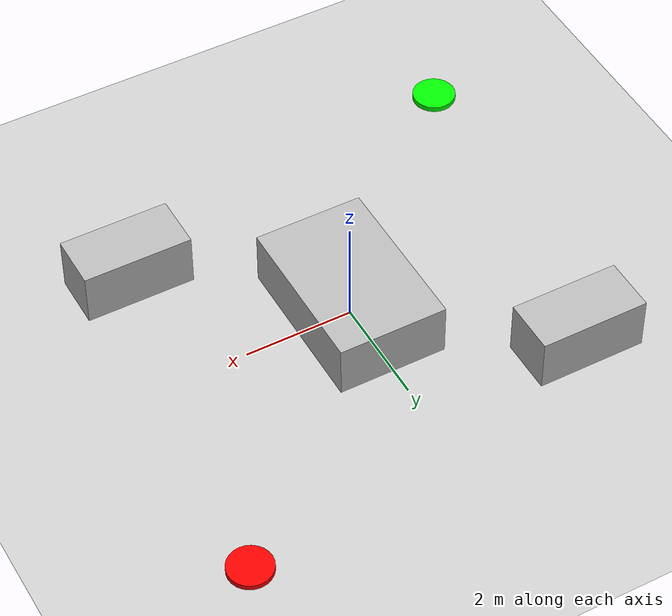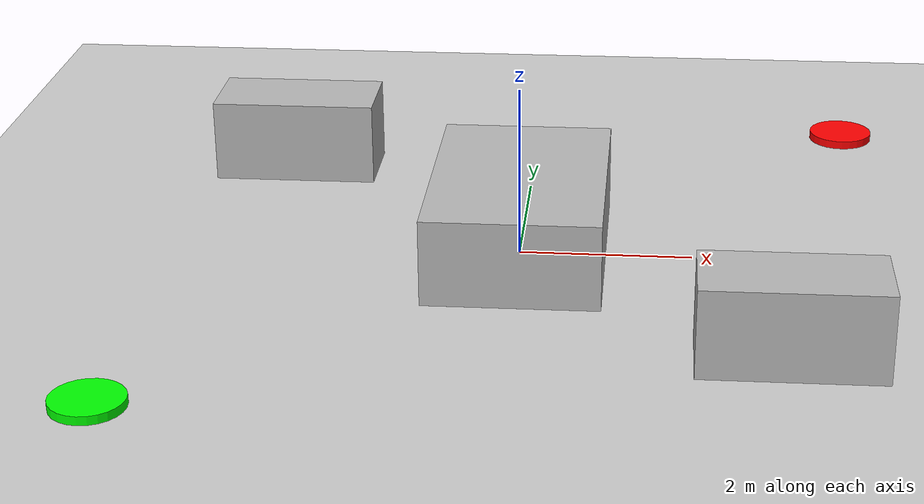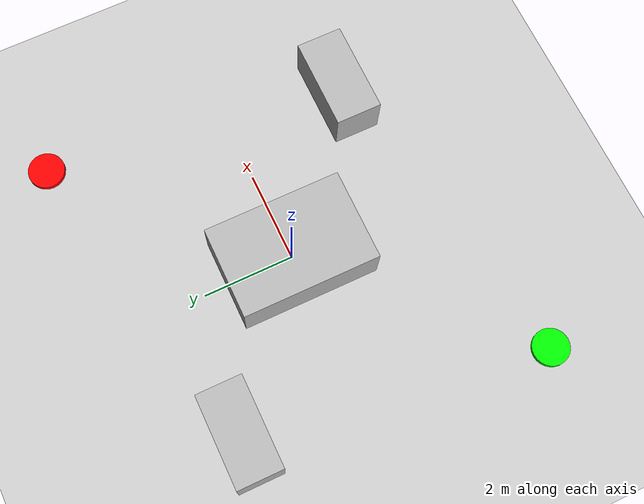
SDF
<?xml version="1.0" ?>

<sdf version="1.6">
  <world name="bug2_world">

    <include>
      <uri>model://ground_plane</uri>
    </include>

    <include>
      <uri>model://sun</uri>
    </include>

    <!-- Central obstacle -->
    <model name="central_obstacle">
      <static>true</static>

      <pose>0 0 0.5 0 0 0</pose>

      <link name="link">

        <collision name="collision">
          <geometry>
            <box>
              <size>2.0 3.0 1.0</size>
            </box>
          </geometry>
        </collision>

        <visual name="visual">
          <geometry>
            <box>
              <size>2.0 3.0 1.0</size>
            </box>
          </geometry>
        </visual>

      </link>
    </model>

    <!-- Left obstacle -->
    <model name="left_obstacle">
      <static>true</static>

      <pose>-3 2.5 0.5 0 0 0</pose>

      <link name="link">

        <collision name="collision">
          <geometry>
            <box>
              <size>2.0 1.0 1.0</size>
            </box>
          </geometry>
        </collision>

        <visual name="visual">
          <geometry>
            <box>
              <size>2.0 1.0 1.0</size>
            </box>
          </geometry>
        </visual>

      </link>
    </model>

    <!-- Right obstacle -->
    <model name="right_obstacle">
      <static>true</static>

      <pose>3 -2.5 0.5 0 0 0</pose>

      <link name="link">

        <collision name="collision">
          <geometry>
            <box>
              <size>2.0 1.0 1.0</size>
            </box>
          </geometry>
        </collision>

        <visual name="visual">
          <geometry>
            <box>
              <size>2.0 1.0 1.0</size>
            </box>
          </geometry>
        </visual>

      </link>
    </model>

    <!-- START -->
    <model name="start_marker">
      <static>true</static>

      <pose>-4 -4 0.05 0 0 0</pose>

      <link name="link">

        <visual name="visual">
          <geometry>
            <cylinder>
              <radius>0.4</radius>
              <length>0.1</length>
            </cylinder>
          </geometry>

          <material>
            <ambient>0 1 0 1</ambient>
            <diffuse>0 1 0 1</diffuse>
          </material>
        </visual>

      </link>
    </model>

    <!-- GOAL -->
    <model name="goal_marker">
      <static>true</static>

      <pose>4 4 0.05 0 0 0</pose>

      <link name="link">

        <visual name="visual">
          <geometry>
            <cylinder>
              <radius>0.4</radius>
              <length>0.1</length>
            </cylinder>
          </geometry>

          <material>
            <ambient>1 0 0 1</ambient>
            <diffuse>1 0 0 1</diffuse>
          </material>
        </visual>

      </link>
    </model>

  </world>
</sdf>
